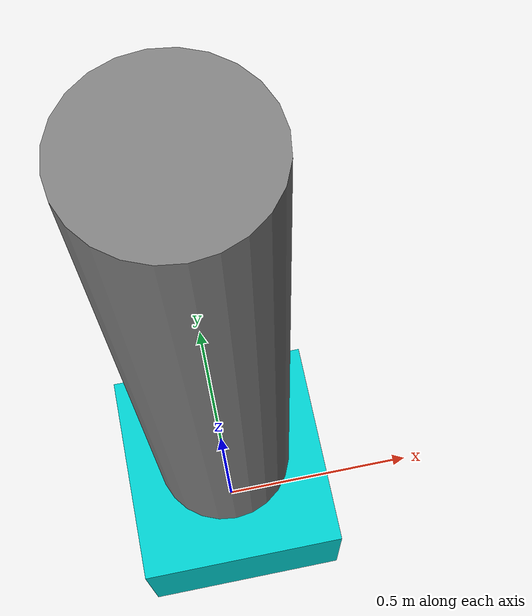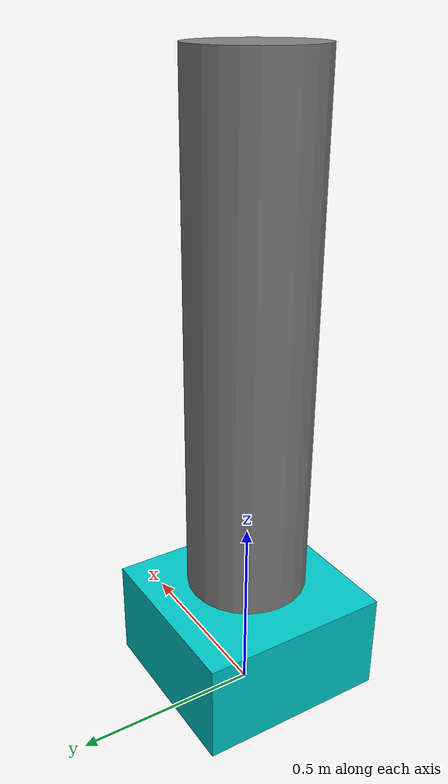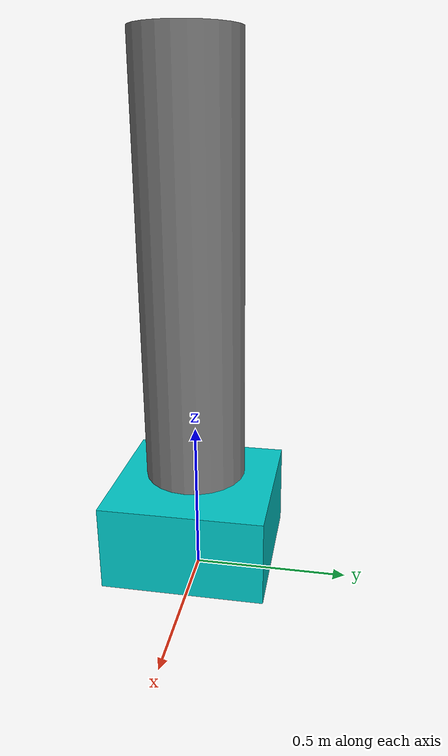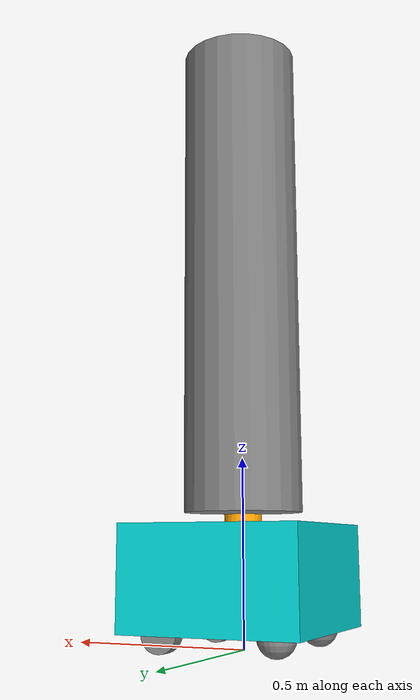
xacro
<?xml version="1.0"?>

<robot name="sid_model" xmlns:xacro="http://www.ros.org/wiki/xacro">

   <xacro:include filename="comm_prop.xacro"/>

    <link name="base_footprint" />

    <link name="base_link">
        <visual>
            <geometry>
                <box size="0.487 0.513 0.275" />
            </geometry>
            <origin xyz="0 0 0.137" rpy="0 0 0" />
            <material name="cyan" />
        </visual>
        <collision>
            <geometry>
                <box size="0.487 0.513 0.275" />
            </geometry>
            <origin xyz="0 0 0.137" rpy="0 0 0" />
        </collision>
        <xacro:box_inertia m="5.0" l="0.487" w="0.513"
            h="0.275" xyz="0 0 0.137" rpy="0 0 0"/>

    </link>

    <joint name="base_joint" type="fixed">
        <parent link="base_footprint" />
        <child link="base_link" />
        <origin xyz="0 0 0.05" rpy="0 0 0"/>
    </joint>

    <link name="left_wheel_link">
        <visual>
            <geometry>
                <cylinder radius="0.05" length="0.04" />
            </geometry>
            <origin xyz="0 0 0" rpy="${pi / 2.0} 0 0" />
            <material name="grey" />
        </visual>
        <collision>
            <geometry>
                <cylinder radius="0.05" length="0.04" />
            </geometry>
            <origin xyz="0 0 0" rpy="${pi / 2.0} 0 0" />
            <material name="grey" />
        </collision>
        <xacro:wheel_inertia m="1.0" xyz="0 0 0"
        rpy="${pi / 2.0} 0 0" r="0.05" h="0.04" />
    </link>

    <joint name="left_wheel_joint" type="continuous">
        <parent link="base_link" />
        <child link="left_wheel_link" />
        <origin xyz="0.153 0.177 0" rpy="0 0 0"/>
        <axis xyz="0 1 0" />
    </joint>

    <link name="right_wheel_link">
        <visual>
            <geometry>
                <cylinder radius="0.05" length="0.04" />
            </geometry>
            <origin xyz="0 0 0" rpy="${pi / 2.0} 0 0" />
            <material name="grey" />
        </visual>
        <collision>
            <geometry>
                <cylinder radius="0.05" length="0.04" />
            </geometry>
            <origin xyz="0 0 0" rpy="${pi / 2.0} 0 0" />
            <material name="grey" />
        </collision>
        <xacro:wheel_inertia m="1.0" xyz="0 0 0"
        rpy="${pi / 2.0} 0 0" r="0.05" h="0.04" />
    </link>

    <joint name="right_wheel_joint" type="continuous">
        <parent link="base_link" />
        <child link="right_wheel_link" />
        <origin xyz="0.153 -0.177 0" rpy="0 0 0"/>
        <axis xyz="0 1 0" />
    </joint>

    <link name="left_caster">
        <visual>
            <geometry>
                <sphere radius="0.05" />
            </geometry>
            <origin xyz="0 0 0" rpy="0 0 0"/>
            <material name="grey" />
        </visual>
        <collision>
            <geometry>
                <sphere radius="0.05" />
            </geometry>
            <origin xyz="0 0 0" rpy="0 0 0"/>
            <material name="grey" />
        </collision>
        <xacro:caster_inertia m="0.5" xyz="0 0 0"
        rpy="0 0 0" r="0.05" />
    </link>

    <joint name="left_caster_joint" type="fixed">
        <parent link="base_link" />
        <child link="left_caster" />
        <origin xyz="-0.153 0.166 0" rpy="0 0 0"/>
    </joint>

    <link name="right_caster">
        <visual>
            <geometry>
                <sphere radius="0.05" />
            </geometry>
            <origin xyz="0 0 0" rpy="0 0 0"/>
            <material name="grey" />
        </visual>
        <collision>
            <geometry>
                <sphere radius="0.05" />
            </geometry>
            <origin xyz="0 0 0" rpy="0 0 0"/>
            <material name="grey" />
        </collision>
        <xacro:caster_inertia m="0.5" xyz="0 0 0"
        rpy="0 0 0" r="0.05" />
    </link>

    <joint name="right_caster_joint" type="fixed">
        <parent link="base_link" />
        <child link="right_caster" />
        <origin xyz="-0.153 -0.166 0" rpy="0 0 0"/>
    </joint>

    <link name="body_link">
        <visual>
            <geometry>
                <cylinder radius="0.160" length="1.330" />
            </geometry>
            <origin xyz="0 0 0.665" rpy="0 0 0" />
            <material name="grey" />
        </visual>
        <collision>
            <geometry>
                <cylinder radius="0.05" length="0.04" />
            </geometry>
            <origin xyz="0 0 0.665" rpy="0 0 0" />
            <material name="grey" />
        </collision>
        <xacro:wheel_inertia m="1.0" xyz="0 0 0.665"
        rpy="0 0 0" r="0.160" h="1.330" />
    </link>

    <joint name="body_joint" type="fixed">
        <parent link="base_link" />
        <child link="body_link" />
        <origin xyz="0 0 0.305" rpy="0 0 0"/>
    </joint>

   <xacro:include filename="sid_model_gazebo.xacro"/>
   <xacro:include filename="lidar_link.xacro"/>

</robot>

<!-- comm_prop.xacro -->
<robot xmlns:xacro="http://www.ros.org/wiki/xacro">

    <material name="blue">
        <color rgba="0 0 1 1" />
    </material>

    <material name="grey">
        <color rgba="0.5 0.5 0.5 1" />
    </material>

    <material name="cyan">
        <color rgba="0 0.8 0.8 1" />
    </material>

    <material name="white">
        <color rgba="1 1 1 1" />
    </material>

    <material name="orange">
        <color rgba="1 0.64 0 1" />
    </material>

    <xacro:macro name="box_inertia" params="m l w h xyz rpy">

        <inertial>
            <origin xyz="${xyz}" rpy="${rpy}" />
            <mass value="${m}"/>
            <inertia ixx="${(m/12)*((h*h)+(l*l))}" ixy="0" ixz="0"
                    iyy="${(m/12)*((w*w)+(l*l))}" iyz="0"
                    izz="${(m/12)*((w*w)+(h*h))}"/>
        </inertial>

    </xacro:macro>

    <xacro:macro name="wheel_inertia" params="m xyz rpy r h">

        <inertial>
            <origin xyz="${xyz}" rpy="${rpy}" />
            <mass value="${m}"/>
            <inertia ixx="${(m/12)*((3*r*r)+(h*h))}" ixy="0" ixz="0"
                    iyy="${(m/12)*((3*r*r)+(h*h))}" iyz="0"
                    izz="${(m*r*r)/2}"/>
        </inertial>

    </xacro:macro>

    <xacro:macro name="caster_inertia" params="m xyz rpy r">

        <inertial>
            <origin xyz="${xyz}" rpy="${rpy}" />
            <mass value="${m}"/>
            <inertia ixx="${(2*m*r*r)/5}" ixy="0" ixz="0"
                    iyy="${(2*m*r*r)/5}" iyz="0"
                    izz="${(2*m*r*r)/5}"/>
        </inertial>

    </xacro:macro>

</robot>

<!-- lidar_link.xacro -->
<robot xmlns:xacro="http://www.ros.org/wiki/xacro">

    <link name="lidar_link">
        <visual>
            <geometry>
                <cylinder radius="0.05" length="0.04" />
            </geometry>
            <origin xyz="0 0 0" rpy="0 0 0" />
            <material name="orange" />
        </visual>
        <collision>
            <geometry>
                <cylinder radius="0.05" length="0.04" />
            </geometry>
            <origin xyz="0 0 0" rpy="0 0 0" />
        </collision>
        <xacro:wheel_inertia m="0.50" xyz="0 0 0"
        rpy="0 0 0" r="0.05" h="0.04" />
    </link>

        <joint name="lidar_joint" type="fixed">
        <parent link="base_link" />
        <child link="lidar_link" />
        <origin xyz="0 0 0.280 " rpy="0 0 0"/>
    </joint>

<gazebo reference="lidar_link">
        <material>Gazebo/Red</material>
        <sensor name="lidar" type="ray">
    <pose>0 0 0 0 0 0</pose>
    <always_on>true</always_on>
    <visualize>true</visualize>
    <update_rate>5</update_rate>
    <ray>
      <scan>
        <horizontal>
          <samples>360</samples>
          <resolution>1.00000</resolution>
          <min_angle>-3.14</min_angle>
          <max_angle>3.14</max_angle>
        </horizontal>
      </scan>
      <range>
        <min>0.3</min>
        <max>12</max>
        <resolution>0.1</resolution>
      </range>
      <noise>
        <type>gaussian</type>
        <mean>0.0</mean>
        <stddev>0.01</stddev>
      </noise>
    </ray>
    <plugin name="scan" filename="libgazebo_ros_ray_sensor.so">
      <ros>
        <remapping>~/out:=scan</remapping>
      </ros>
      <output_type>sensor_msgs/LaserScan</output_type>
      <frame_name>lidar_link</frame_name>
    </plugin>
  </sensor>
</gazebo>

</robot>
